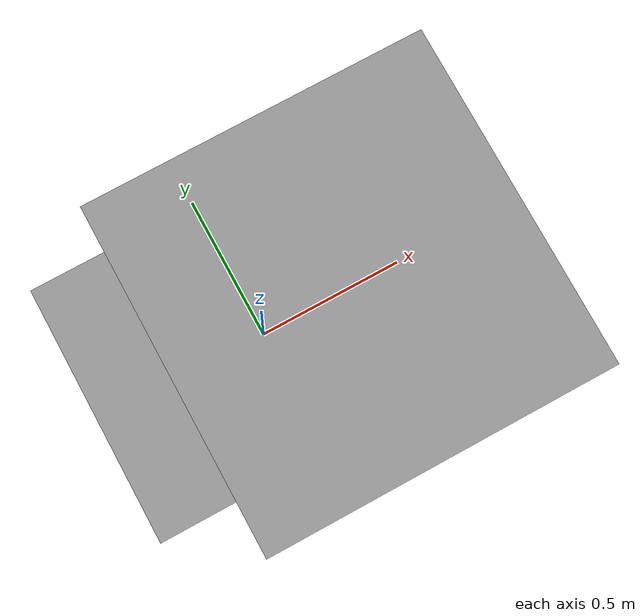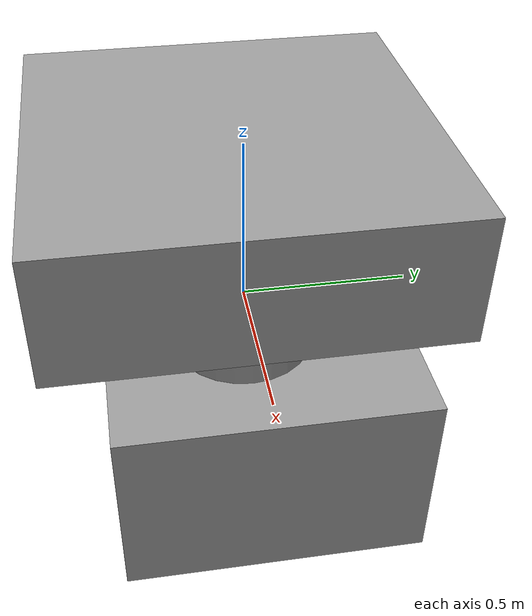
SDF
<?xml version='1.0'?>
<sdf version='1.7'>
  <model name='rotate_box_bot'>
    <link name='link_0'>
      <inertial>
        <mass>0.62855</mass>
        <inertia>
          <ixx>0.0730727</ixx>
          <ixy>0</ixy>
          <ixz>0</ixz>
          <iyy>0.0730727</iyy>
          <iyz>0</iyz>
          <izz>0.104758</izz>
        </inertia>
        <pose>0 0 0 0 -0 0</pose>
      </inertial>
      <pose>-0.142107 0.058655 -0.552528 0 -0 0</pose>
      <gravity>1</gravity>
      <self_collide>0</self_collide>
      <kinematic>0</kinematic>
      <enable_wind>0</enable_wind>
      <visual name='visual'>
        <pose>0 0 0 0 -0 0</pose>
        <geometry>
          <box>
            <size>1 1 0.628546</size>
          </box>
        </geometry>
        <material>
          <lighting>1</lighting>
          <script>
            <uri>file://media/materials/scripts/gazebo.material</uri>
            <name>Gazebo/Grey</name>
          </script>
          <shader type='pixel'>
            <normal_map>__default__</normal_map>
          </shader>
          <ambient>0.3 0.3 0.3 1</ambient>
          <diffuse>0.7 0.7 0.7 1</diffuse>
          <specular>0.01 0.01 0.01 1</specular>
          <emissive>0 0 0 1</emissive>
        </material>
        <transparency>0</transparency>
        <cast_shadows>1</cast_shadows>
      </visual>
      <collision name='collision'>
        <laser_retro>0</laser_retro>
        <max_contacts>10</max_contacts>
        <pose>0 0 0 0 -0 0</pose>
        <geometry>
          <box>
            <size>1 1 0.628546</size>
          </box>
        </geometry>
        <surface>
          <friction>
            <ode>
              <mu>1</mu>
              <mu2>1</mu2>
              <fdir1>0 0 0</fdir1>
              <slip1>0</slip1>
              <slip2>0</slip2>
            </ode>
            <torsional>
              <coefficient>1</coefficient>
              <patch_radius>0</patch_radius>
              <surface_radius>0</surface_radius>
              <use_patch_radius>1</use_patch_radius>
              <ode>
                <slip>0</slip>
              </ode>
            </torsional>
          </friction>
          <bounce>
            <restitution_coefficient>0</restitution_coefficient>
            <threshold>1e+06</threshold>
          </bounce>
          <contact>
            <collide_without_contact>0</collide_without_contact>
            <collide_without_contact_bitmask>1</collide_without_contact_bitmask>
            <collide_bitmask>1</collide_bitmask>
            <ode>
              <soft_cfm>0</soft_cfm>
              <soft_erp>0.2</soft_erp>
              <kp>1e+13</kp>
              <kd>1</kd>
              <max_vel>0.01</max_vel>
              <min_depth>0</min_depth>
            </ode>
            <bullet>
              <split_impulse>1</split_impulse>
              <split_impulse_penetration_threshold>-0.01</split_impulse_penetration_threshold>
              <soft_cfm>0</soft_cfm>
              <soft_erp>0.2</soft_erp>
              <kp>1e+13</kp>
              <kd>1</kd>
            </bullet>
          </contact>
        </surface>
      </collision>
    </link>
    <link name='link_1'>
      <inertial>
        <mass>0.115477</mass>
        <inertia>
          <ixx>0.00463332</ixx>
          <ixy>0</ixy>
          <ixz>0</ixz>
          <iyy>0.00463332</iyy>
          <iyz>0</iyz>
          <izz>0.00289698</izz>
        </inertia>
        <pose>0 0 0 0 -0 0</pose>
      </inertial>
      <pose>-0.069719 0.006867 0.049391 0 -0 0</pose>
      <visual name='visual'>
        <pose>0 0 0 0 -0 0</pose>
        <geometry>
          <cylinder>
            <radius>0.223996</radius>
            <length>0.57529</length>
          </cylinder>
        </geometry>
        <material>
          <lighting>1</lighting>
          <script>
            <uri>file://media/materials/scripts/gazebo.material</uri>
            <name>Gazebo/Grey</name>
          </script>
          <shader type='pixel'/>
          <emissive>0 0 0 1</emissive>
        </material>
        <transparency>0</transparency>
        <cast_shadows>1</cast_shadows>
      </visual>
      <collision name='collision'>
        <laser_retro>0</laser_retro>
        <max_contacts>10</max_contacts>
        <pose>0 0 0 0 -0 0</pose>
        <geometry>
          <cylinder>
            <radius>0.223996</radius>
            <length>0.57529</length>
          </cylinder>
        </geometry>
        <surface>
          <friction>
            <ode>
              <mu>1</mu>
              <mu2>1</mu2>
              <fdir1>0 0 0</fdir1>
              <slip1>0</slip1>
              <slip2>0</slip2>
            </ode>
            <torsional>
              <coefficient>1</coefficient>
              <patch_radius>0</patch_radius>
              <surface_radius>0</surface_radius>
              <use_patch_radius>1</use_patch_radius>
              <ode>
                <slip>0</slip>
              </ode>
            </torsional>
          </friction>
          <bounce>
            <restitution_coefficient>0</restitution_coefficient>
            <threshold>1e+06</threshold>
          </bounce>
          <contact>
            <collide_without_contact>0</collide_without_contact>
            <collide_without_contact_bitmask>1</collide_without_contact_bitmask>
            <collide_bitmask>1</collide_bitmask>
            <ode>
              <soft_cfm>0</soft_cfm>
              <soft_erp>0.2</soft_erp>
              <kp>1e+13</kp>
              <kd>1</kd>
              <max_vel>0.01</max_vel>
              <min_depth>0</min_depth>
            </ode>
            <bullet>
              <split_impulse>1</split_impulse>
              <split_impulse_penetration_threshold>-0.01</split_impulse_penetration_threshold>
              <soft_cfm>0</soft_cfm>
              <soft_erp>0.2</soft_erp>
              <kp>1e+13</kp>
              <kd>1</kd>
            </bullet>
          </contact>
        </surface>
      </collision>
    </link>
    <link name='link_2'>
      <inertial>
        <mass>0.332209</mass>
        <inertia>
          <ixx>0.0307394</ixx>
          <ixy>0</ixy>
          <ixz>0</ixz>
          <iyy>0.0307394</iyy>
          <iyz>0</iyz>
          <izz>0.0553682</izz>
        </inertia>
        <pose>0 0 0 0 -0 0</pose>
      </inertial>
      <pose>0.211826 -0.065522 0.503141 0 -0 0</pose>
      <visual name='visual'>
        <pose>0 0 0 0 -0 0</pose>
        <geometry>
          <box>
            <size>1 1 0.33221</size>
          </box>
        </geometry>
        <material>
          <lighting>1</lighting>
          <script>
            <uri>file://media/materials/scripts/gazebo.material</uri>
            <name>Gazebo/Grey</name>
          </script>
          <shader type='pixel'/>
          <emissive>0 0 0 1</emissive>
        </material>
        <transparency>0</transparency>
        <cast_shadows>1</cast_shadows>
      </visual>
      <collision name='collision'>
        <laser_retro>0</laser_retro>
        <max_contacts>10</max_contacts>
        <pose>0 0 0 0 -0 0</pose>
        <geometry>
          <box>
            <size>1 1 0.33221</size>
          </box>
        </geometry>
        <surface>
          <friction>
            <ode>
              <mu>1</mu>
              <mu2>1</mu2>
              <fdir1>0 0 0</fdir1>
              <slip1>0</slip1>
              <slip2>0</slip2>
            </ode>
            <torsional>
              <coefficient>1</coefficient>
              <patch_radius>0</patch_radius>
              <surface_radius>0</surface_radius>
              <use_patch_radius>1</use_patch_radius>
              <ode>
                <slip>0</slip>
              </ode>
            </torsional>
          </friction>
          <bounce>
            <restitution_coefficient>0</restitution_coefficient>
            <threshold>1e+06</threshold>
          </bounce>
          <contact>
            <collide_without_contact>0</collide_without_contact>
            <collide_without_contact_bitmask>1</collide_without_contact_bitmask>
            <collide_bitmask>1</collide_bitmask>
            <ode>
              <soft_cfm>0</soft_cfm>
              <soft_erp>0.2</soft_erp>
              <kp>1e+13</kp>
              <kd>1</kd>
              <max_vel>0.01</max_vel>
              <min_depth>0</min_depth>
            </ode>
            <bullet>
              <split_impulse>1</split_impulse>
              <split_impulse_penetration_threshold>-0.01</split_impulse_penetration_threshold>
              <soft_cfm>0</soft_cfm>
              <soft_erp>0.2</soft_erp>
              <kp>1e+13</kp>
              <kd>1</kd>
            </bullet>
          </contact>
        </surface>
      </collision>
    </link>
    <joint name='link_0_JOINT_0' type='fixed'>
      <parent>link_0</parent>
      <child>link_1</child>
      <pose>0 0 0 0 -0 0</pose>
      <physics>
        <ode>
          <limit>
            <cfm>0</cfm>
            <erp>0.2</erp>
          </limit>
          <suspension>
            <cfm>0</cfm>
            <erp>0.2</erp>
          </suspension>
        </ode>
      </physics>
    </joint>
    <joint name='link_1_JOINT_1' type='revolute'>
      <parent>link_1</parent>
      <child>link_2</child>
      <pose>0 0 0 0 -0 0</pose>
      <axis>
        <xyz>1 0 0</xyz>
        <limit>
          <lower>-1.79769e+308</lower>
          <upper>1.79769e+308</upper>
          <effort>-1</effort>
          <velocity>-1</velocity>
        </limit>
        <dynamics>
          <spring_reference>0</spring_reference>
          <spring_stiffness>0</spring_stiffness>
          <damping>0</damping>
        </dynamics>
      </axis>
      <physics>
        <ode>
          <limit>
            <cfm>0</cfm>
            <erp>0.2</erp>
          </limit>
          <suspension>
            <cfm>0</cfm>
            <erp>0.2</erp>
          </suspension>
        </ode>
      </physics>
    </joint>
    <static>0</static>
    <allow_auto_disable>1</allow_auto_disable>
  </model>
</sdf>
